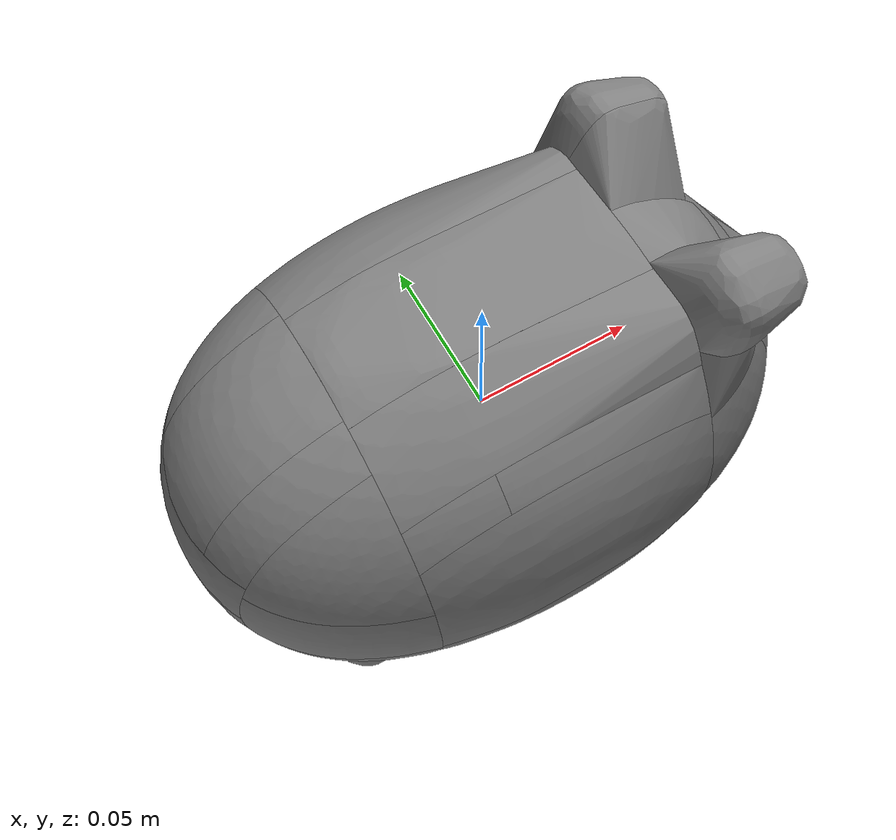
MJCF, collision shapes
<mujoco model="piggy_bank">
  <compiler meshdir="."/>

  <asset>
    <mesh name="piggy_bank" file="piggy_bank.stl"/>
    <mesh name="piggy_bank_collision_hull_000" file="piggy_bank_collision_hull_000.stl"/>
    <mesh name="piggy_bank_collision_hull_001" file="piggy_bank_collision_hull_001.stl"/>
    <mesh name="piggy_bank_collision_hull_002" file="piggy_bank_collision_hull_002.stl"/>
    <mesh name="piggy_bank_collision_hull_003" file="piggy_bank_collision_hull_003.stl"/>
    <mesh name="piggy_bank_collision_hull_004" file="piggy_bank_collision_hull_004.stl"/>
    <mesh name="piggy_bank_collision_hull_005" file="piggy_bank_collision_hull_005.stl"/>
    <mesh name="piggy_bank_collision_hull_006" file="piggy_bank_collision_hull_006.stl"/>
    <mesh name="piggy_bank_collision_hull_007" file="piggy_bank_collision_hull_007.stl"/>
    <mesh name="piggy_bank_collision_hull_008" file="piggy_bank_collision_hull_008.stl"/>
    <mesh name="piggy_bank_collision_hull_009" file="piggy_bank_collision_hull_009.stl"/>
    <mesh name="piggy_bank_collision_hull_010" file="piggy_bank_collision_hull_010.stl"/>
    <mesh name="piggy_bank_collision_hull_011" file="piggy_bank_collision_hull_011.stl"/>
    <mesh name="piggy_bank_collision_hull_012" file="piggy_bank_collision_hull_012.stl"/>
    <mesh name="piggy_bank_collision_hull_013" file="piggy_bank_collision_hull_013.stl"/>
    <mesh name="piggy_bank_collision_hull_014" file="piggy_bank_collision_hull_014.stl"/>
    <mesh name="piggy_bank_collision_hull_015" file="piggy_bank_collision_hull_015.stl"/>
    <mesh name="piggy_bank_collision_hull_016" file="piggy_bank_collision_hull_016.stl"/>
    <mesh name="piggy_bank_collision_hull_017" file="piggy_bank_collision_hull_017.stl"/>
    <mesh name="piggy_bank_collision_hull_018" file="piggy_bank_collision_hull_018.stl"/>
    <mesh name="piggy_bank_collision_hull_019" file="piggy_bank_collision_hull_019.stl"/>
    <mesh name="piggy_bank_collision_hull_020" file="piggy_bank_collision_hull_020.stl"/>
    <mesh name="piggy_bank_collision_hull_021" file="piggy_bank_collision_hull_021.stl"/>
    <mesh name="piggy_bank_collision_hull_022" file="piggy_bank_collision_hull_022.stl"/>
    <mesh name="piggy_bank_collision_hull_023" file="piggy_bank_collision_hull_023.stl"/>
    <mesh name="piggy_bank_collision_hull_024" file="piggy_bank_collision_hull_024.stl"/>
    <mesh name="piggy_bank_collision_hull_025" file="piggy_bank_collision_hull_025.stl"/>
    <mesh name="piggy_bank_collision_hull_026" file="piggy_bank_collision_hull_026.stl"/>
    <mesh name="piggy_bank_collision_hull_027" file="piggy_bank_collision_hull_027.stl"/>
    <mesh name="piggy_bank_collision_hull_028" file="piggy_bank_collision_hull_028.stl"/>
    <mesh name="piggy_bank_collision_hull_029" file="piggy_bank_collision_hull_029.stl"/>
    <mesh name="piggy_bank_collision_hull_030" file="piggy_bank_collision_hull_030.stl"/>
    <mesh name="piggy_bank_collision_hull_031" file="piggy_bank_collision_hull_031.stl"/>
    <mesh name="piggy_bank_collision_hull_032" file="piggy_bank_collision_hull_032.stl"/>
    <mesh name="piggy_bank_collision_hull_033" file="piggy_bank_collision_hull_033.stl"/>
    <mesh name="piggy_bank_collision_hull_034" file="piggy_bank_collision_hull_034.stl"/>
    <mesh name="piggy_bank_collision_hull_035" file="piggy_bank_collision_hull_035.stl"/>
    <mesh name="piggy_bank_collision_hull_036" file="piggy_bank_collision_hull_036.stl"/>
    <mesh name="piggy_bank_collision_hull_037" file="piggy_bank_collision_hull_037.stl"/>
    <mesh name="piggy_bank_collision_hull_038" file="piggy_bank_collision_hull_038.stl"/>
    <mesh name="piggy_bank_collision_hull_039" file="piggy_bank_collision_hull_039.stl"/>
    <mesh name="piggy_bank_collision_hull_040" file="piggy_bank_collision_hull_040.stl"/>
    <mesh name="piggy_bank_collision_hull_041" file="piggy_bank_collision_hull_041.stl"/>
    <mesh name="piggy_bank_collision_hull_042" file="piggy_bank_collision_hull_042.stl"/>
    <mesh name="piggy_bank_collision_hull_043" file="piggy_bank_collision_hull_043.stl"/>
    <mesh name="piggy_bank_collision_hull_044" file="piggy_bank_collision_hull_044.stl"/>
    <mesh name="piggy_bank_collision_hull_045" file="piggy_bank_collision_hull_045.stl"/>
    <mesh name="piggy_bank_collision_hull_046" file="piggy_bank_collision_hull_046.stl"/>
    <mesh name="piggy_bank_collision_hull_047" file="piggy_bank_collision_hull_047.stl"/>
    <mesh name="piggy_bank_collision_hull_048" file="piggy_bank_collision_hull_048.stl"/>
    <mesh name="piggy_bank_collision_hull_049" file="piggy_bank_collision_hull_049.stl"/>
    <mesh name="piggy_bank_collision_hull_050" file="piggy_bank_collision_hull_050.stl"/>
    <mesh name="piggy_bank_collision_hull_051" file="piggy_bank_collision_hull_051.stl"/>
    <mesh name="piggy_bank_collision_hull_052" file="piggy_bank_collision_hull_052.stl"/>
    <mesh name="piggy_bank_collision_hull_053" file="piggy_bank_collision_hull_053.stl"/>
    <mesh name="piggy_bank_collision_hull_054" file="piggy_bank_collision_hull_054.stl"/>
    <mesh name="piggy_bank_collision_hull_055" file="piggy_bank_collision_hull_055.stl"/>
    <mesh name="piggy_bank_collision_hull_056" file="piggy_bank_collision_hull_056.stl"/>
    <mesh name="piggy_bank_collision_hull_057" file="piggy_bank_collision_hull_057.stl"/>
    <mesh name="piggy_bank_collision_hull_058" file="piggy_bank_collision_hull_058.stl"/>
    <mesh name="piggy_bank_collision_hull_059" file="piggy_bank_collision_hull_059.stl"/>
  </asset>

  <worldbody>
    <body name="object">
      <freejoint name="object_joint"/>
      <geom name="object_visual" type="mesh" mesh="piggy_bank"
            contype="0" conaffinity="0" group="2" rgba="0.9 0.9 0.8 1" mass="0"/>
      <geom name="piggy_bank_collision_hull_000_collision" type="mesh" mesh="piggy_bank_collision_hull_000"
            mass="0.0008" condim="6" friction="1.0 0.002 0.002" priority="1"/>
      <geom name="piggy_bank_collision_hull_001_collision" type="mesh" mesh="piggy_bank_collision_hull_001"
            mass="0.0008" condim="6" friction="1.0 0.002 0.002" priority="1"/>
      <geom name="piggy_bank_collision_hull_002_collision" type="mesh" mesh="piggy_bank_collision_hull_002"
            mass="0.0008" condim="6" friction="1.0 0.002 0.002" priority="1"/>
      <geom name="piggy_bank_collision_hull_003_collision" type="mesh" mesh="piggy_bank_collision_hull_003"
            mass="0.0008" condim="6" friction="1.0 0.002 0.002" priority="1"/>
      <geom name="piggy_bank_collision_hull_004_collision" type="mesh" mesh="piggy_bank_collision_hull_004"
            mass="0.0008" condim="6" friction="1.0 0.002 0.002" priority="1"/>
      <geom name="piggy_bank_collision_hull_005_collision" type="mesh" mesh="piggy_bank_collision_hull_005"
            mass="0.0008" condim="6" friction="1.0 0.002 0.002" priority="1"/>
      <geom name="piggy_bank_collision_hull_006_collision" type="mesh" mesh="piggy_bank_collision_hull_006"
            mass="0.0008" condim="6" friction="1.0 0.002 0.002" priority="1"/>
      <geom name="piggy_bank_collision_hull_007_collision" type="mesh" mesh="piggy_bank_collision_hull_007"
            mass="0.0008" condim="6" friction="1.0 0.002 0.002" priority="1"/>
      <geom name="piggy_bank_collision_hull_008_collision" type="mesh" mesh="piggy_bank_collision_hull_008"
            mass="0.0008" condim="6" friction="1.0 0.002 0.002" priority="1"/>
      <geom name="piggy_bank_collision_hull_009_collision" type="mesh" mesh="piggy_bank_collision_hull_009"
            mass="0.0008" condim="6" friction="1.0 0.002 0.002" priority="1"/>
      <geom name="piggy_bank_collision_hull_010_collision" type="mesh" mesh="piggy_bank_collision_hull_010"
            mass="0.0008" condim="6" friction="1.0 0.002 0.002" priority="1"/>
      <geom name="piggy_bank_collision_hull_011_collision" type="mesh" mesh="piggy_bank_collision_hull_011"
            mass="0.0008" condim="6" friction="1.0 0.002 0.002" priority="1"/>
      <geom name="piggy_bank_collision_hull_012_collision" type="mesh" mesh="piggy_bank_collision_hull_012"
            mass="0.0008" condim="6" friction="1.0 0.002 0.002" priority="1"/>
      <geom name="piggy_bank_collision_hull_013_collision" type="mesh" mesh="piggy_bank_collision_hull_013"
            mass="0.0008" condim="6" friction="1.0 0.002 0.002" priority="1"/>
      <geom name="piggy_bank_collision_hull_014_collision" type="mesh" mesh="piggy_bank_collision_hull_014"
            mass="0.0008" condim="6" friction="1.0 0.002 0.002" priority="1"/>
      <geom name="piggy_bank_collision_hull_015_collision" type="mesh" mesh="piggy_bank_collision_hull_015"
            mass="0.0008" condim="6" friction="1.0 0.002 0.002" priority="1"/>
      <geom name="piggy_bank_collision_hull_016_collision" type="mesh" mesh="piggy_bank_collision_hull_016"
            mass="0.0008" condim="6" friction="1.0 0.002 0.002" priority="1"/>
      <geom name="piggy_bank_collision_hull_017_collision" type="mesh" mesh="piggy_bank_collision_hull_017"
            mass="0.0008" condim="6" friction="1.0 0.002 0.002" priority="1"/>
      <geom name="piggy_bank_collision_hull_018_collision" type="mesh" mesh="piggy_bank_collision_hull_018"
            mass="0.0008" condim="6" friction="1.0 0.002 0.002" priority="1"/>
      <geom name="piggy_bank_collision_hull_019_collision" type="mesh" mesh="piggy_bank_collision_hull_019"
            mass="0.0008" condim="6" friction="1.0 0.002 0.002" priority="1"/>
      <geom name="piggy_bank_collision_hull_020_collision" type="mesh" mesh="piggy_bank_collision_hull_020"
            mass="0.0008" condim="6" friction="1.0 0.002 0.002" priority="1"/>
      <geom name="piggy_bank_collision_hull_021_collision" type="mesh" mesh="piggy_bank_collision_hull_021"
            mass="0.0008" condim="6" friction="1.0 0.002 0.002" priority="1"/>
      <geom name="piggy_bank_collision_hull_022_collision" type="mesh" mesh="piggy_bank_collision_hull_022"
            mass="0.0008" condim="6" friction="1.0 0.002 0.002" priority="1"/>
      <geom name="piggy_bank_collision_hull_023_collision" type="mesh" mesh="piggy_bank_collision_hull_023"
            mass="0.0008" condim="6" friction="1.0 0.002 0.002" priority="1"/>
      <geom name="piggy_bank_collision_hull_024_collision" type="mesh" mesh="piggy_bank_collision_hull_024"
            mass="0.0008" condim="6" friction="1.0 0.002 0.002" priority="1"/>
      <geom name="piggy_bank_collision_hull_025_collision" type="mesh" mesh="piggy_bank_collision_hull_025"
            mass="0.0008" condim="6" friction="1.0 0.002 0.002" priority="1"/>
      <geom name="piggy_bank_collision_hull_026_collision" type="mesh" mesh="piggy_bank_collision_hull_026"
            mass="0.0008" condim="6" friction="1.0 0.002 0.002" priority="1"/>
      <geom name="piggy_bank_collision_hull_027_collision" type="mesh" mesh="piggy_bank_collision_hull_027"
            mass="0.0008" condim="6" friction="1.0 0.002 0.002" priority="1"/>
      <geom name="piggy_bank_collision_hull_028_collision" type="mesh" mesh="piggy_bank_collision_hull_028"
            mass="0.0008" condim="6" friction="1.0 0.002 0.002" priority="1"/>
      <geom name="piggy_bank_collision_hull_029_collision" type="mesh" mesh="piggy_bank_collision_hull_029"
            mass="0.0008" condim="6" friction="1.0 0.002 0.002" priority="1"/>
      <geom name="piggy_bank_collision_hull_030_collision" type="mesh" mesh="piggy_bank_collision_hull_030"
            mass="0.0008" condim="6" friction="1.0 0.002 0.002" priority="1"/>
      <geom name="piggy_bank_collision_hull_031_collision" type="mesh" mesh="piggy_bank_collision_hull_031"
            mass="0.0008" condim="6" friction="1.0 0.002 0.002" priority="1"/>
      <geom name="piggy_bank_collision_hull_032_collision" type="mesh" mesh="piggy_bank_collision_hull_032"
            mass="0.0008" condim="6" friction="1.0 0.002 0.002" priority="1"/>
      <geom name="piggy_bank_collision_hull_033_collision" type="mesh" mesh="piggy_bank_collision_hull_033"
            mass="0.0008" condim="6" friction="1.0 0.002 0.002" priority="1"/>
      <geom name="piggy_bank_collision_hull_034_collision" type="mesh" mesh="piggy_bank_collision_hull_034"
            mass="0.0008" condim="6" friction="1.0 0.002 0.002" priority="1"/>
      <geom name="piggy_bank_collision_hull_035_collision" type="mesh" mesh="piggy_bank_collision_hull_035"
            mass="0.0008" condim="6" friction="1.0 0.002 0.002" priority="1"/>
      <geom name="piggy_bank_collision_hull_036_collision" type="mesh" mesh="piggy_bank_collision_hull_036"
            mass="0.0008" condim="6" friction="1.0 0.002 0.002" priority="1"/>
      <geom name="piggy_bank_collision_hull_037_collision" type="mesh" mesh="piggy_bank_collision_hull_037"
            mass="0.0008" condim="6" friction="1.0 0.002 0.002" priority="1"/>
      <geom name="piggy_bank_collision_hull_038_collision" type="mesh" mesh="piggy_bank_collision_hull_038"
            mass="0.0008" condim="6" friction="1.0 0.002 0.002" priority="1"/>
      <geom name="piggy_bank_collision_hull_039_collision" type="mesh" mesh="piggy_bank_collision_hull_039"
            mass="0.0008" condim="6" friction="1.0 0.002 0.002" priority="1"/>
      <geom name="piggy_bank_collision_hull_040_collision" type="mesh" mesh="piggy_bank_collision_hull_040"
            mass="0.0008" condim="6" friction="1.0 0.002 0.002" priority="1"/>
      <geom name="piggy_bank_collision_hull_041_collision" type="mesh" mesh="piggy_bank_collision_hull_041"
            mass="0.0008" condim="6" friction="1.0 0.002 0.002" priority="1"/>
      <geom name="piggy_bank_collision_hull_042_collision" type="mesh" mesh="piggy_bank_collision_hull_042"
            mass="0.0008" condim="6" friction="1.0 0.002 0.002" priority="1"/>
      <geom name="piggy_bank_collision_hull_043_collision" type="mesh" mesh="piggy_bank_collision_hull_043"
            mass="0.0008" condim="6" friction="1.0 0.002 0.002" priority="1"/>
      <geom name="piggy_bank_collision_hull_044_collision" type="mesh" mesh="piggy_bank_collision_hull_044"
            mass="0.0008" condim="6" friction="1.0 0.002 0.002" priority="1"/>
      <geom name="piggy_bank_collision_hull_045_collision" type="mesh" mesh="piggy_bank_collision_hull_045"
            mass="0.0008" condim="6" friction="1.0 0.002 0.002" priority="1"/>
      <geom name="piggy_bank_collision_hull_046_collision" type="mesh" mesh="piggy_bank_collision_hull_046"
            mass="0.0008" condim="6" friction="1.0 0.002 0.002" priority="1"/>
      <geom name="piggy_bank_collision_hull_047_collision" type="mesh" mesh="piggy_bank_collision_hull_047"
            mass="0.0008" condim="6" friction="1.0 0.002 0.002" priority="1"/>
      <geom name="piggy_bank_collision_hull_048_collision" type="mesh" mesh="piggy_bank_collision_hull_048"
            mass="0.0008" condim="6" friction="1.0 0.002 0.002" priority="1"/>
      <geom name="piggy_bank_collision_hull_049_collision" type="mesh" mesh="piggy_bank_collision_hull_049"
            mass="0.0008" condim="6" friction="1.0 0.002 0.002" priority="1"/>
      <geom name="piggy_bank_collision_hull_050_collision" type="mesh" mesh="piggy_bank_collision_hull_050"
            mass="0.0008" condim="6" friction="1.0 0.002 0.002" priority="1"/>
      <geom name="piggy_bank_collision_hull_051_collision" type="mesh" mesh="piggy_bank_collision_hull_051"
            mass="0.0008" condim="6" friction="1.0 0.002 0.002" priority="1"/>
      <geom name="piggy_bank_collision_hull_052_collision" type="mesh" mesh="piggy_bank_collision_hull_052"
            mass="0.0008" condim="6" friction="1.0 0.002 0.002" priority="1"/>
      <geom name="piggy_bank_collision_hull_053_collision" type="mesh" mesh="piggy_bank_collision_hull_053"
            mass="0.0008" condim="6" friction="1.0 0.002 0.002" priority="1"/>
      <geom name="piggy_bank_collision_hull_054_collision" type="mesh" mesh="piggy_bank_collision_hull_054"
            mass="0.0008" condim="6" friction="1.0 0.002 0.002" priority="1"/>
      <geom name="piggy_bank_collision_hull_055_collision" type="mesh" mesh="piggy_bank_collision_hull_055"
            mass="0.0008" condim="6" friction="1.0 0.002 0.002" priority="1"/>
      <geom name="piggy_bank_collision_hull_056_collision" type="mesh" mesh="piggy_bank_collision_hull_056"
            mass="0.0008" condim="6" friction="1.0 0.002 0.002" priority="1"/>
      <geom name="piggy_bank_collision_hull_057_collision" type="mesh" mesh="piggy_bank_collision_hull_057"
            mass="0.0008" condim="6" friction="1.0 0.002 0.002" priority="1"/>
      <geom name="piggy_bank_collision_hull_058_collision" type="mesh" mesh="piggy_bank_collision_hull_058"
            mass="0.0008" condim="6" friction="1.0 0.002 0.002" priority="1"/>
      <geom name="piggy_bank_collision_hull_059_collision" type="mesh" mesh="piggy_bank_collision_hull_059"
            mass="0.0008" condim="6" friction="1.0 0.002 0.002" priority="1"/>
    </body>
  </worldbody>
</mujoco>
